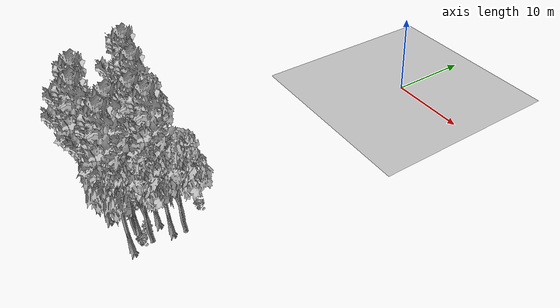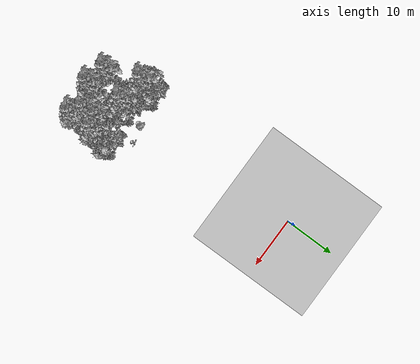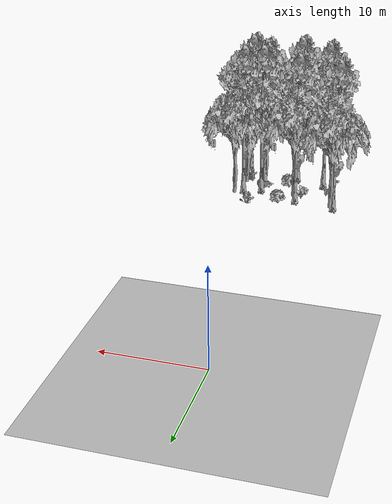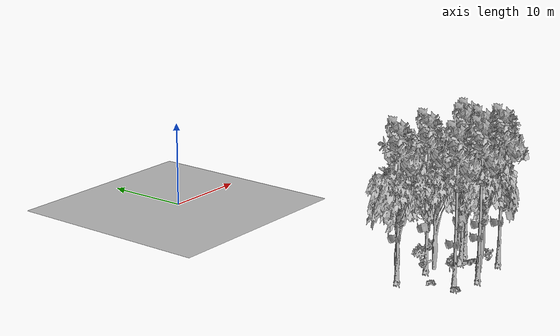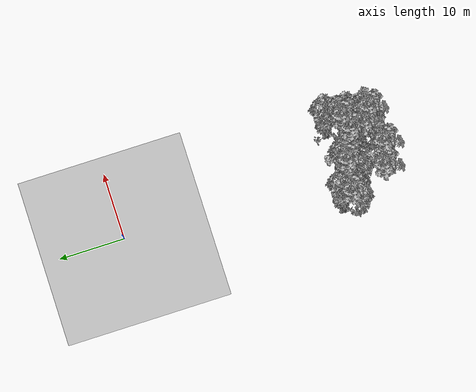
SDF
<sdf version="1.7">
 <world name="default">
  <model name="ground_plane">
   <static>1</static>
   <link name="link">
    <collision name="collision">
     <pose>-50 0 0 0 -0 0</pose>
     <geometry><plane><normal>0 0 1</normal><size>80 80</size></plane></geometry>
     <surface><contact><ode><min_depth>0.01</min_depth><max_vel>0</max_vel></ode></contact></surface>
    </collision>
    <visual name="grass">
     <cast_shadows>0</cast_shadows>
     <geometry>
      <mesh>
       <scale>0.46714285714285714 0.46714285714285714 0.1</scale>
       <uri>file://grass_plane/meshes/grass_plane.dae</uri>
      </mesh>
     </geometry>
    </visual>
   </link>
  </model>
  <model name="Tree 29">
   <static>1</static>
   <pose>0.5790758655412063 -35.10344212327158 0 1.57079 -0 0</pose>
   <link name="link">
    <collision name="collision">
     <geometry><mesh><scale>3.5 5 3.5</scale><uri>model://tree_2/meshes/tree_2.obj</uri></mesh></geometry>
    </collision>
    <visual name="visual">
     <geometry><mesh><scale>3.5 5 3.5</scale><uri>model://tree_2/meshes/tree_2.obj</uri></mesh></geometry>
    </visual>
   </link>
  </model>
  <model name="Tree 60">
   <static>1</static>
   <pose>-3.9295476951160424 -33.3151165129877 0 1.57079 -0 0</pose>
   <link name="link">
    <collision name="collision">
     <geometry><mesh><scale>3.5 5 3.5</scale><uri>model://tree_2/meshes/tree_2.obj</uri></mesh></geometry>
    </collision>
    <visual name="visual">
     <geometry><mesh><scale>3.5 5 3.5</scale><uri>model://tree_2/meshes/tree_2.obj</uri></mesh></geometry>
    </visual>
   </link>
  </model>
  <model name="Tree 113">
   <static>1</static>
   <pose>6.532601404913919 -37.421318994722185 0 1.57079 -0 0</pose>
   <link name="link">
    <collision name="collision">
     <geometry><mesh><scale>3.5 5 3.5</scale><uri>model://tree_2/meshes/tree_2.obj</uri></mesh></geometry>
    </collision>
    <visual name="visual">
     <geometry><mesh><scale>3.5 5 3.5</scale><uri>model://tree_2/meshes/tree_2.obj</uri></mesh></geometry>
    </visual>
   </link>
  </model>
  <model name="Tree 158">
   <static>1</static>
   <pose>1.2398910205611173 -39.98071643000988 0 1.57079 -0 0</pose>
   <link name="link">
    <collision name="collision">
     <geometry><mesh><scale>3.5 5 3.5</scale><uri>model://tree_9/meshes/tree_9.obj</uri></mesh></geometry>
    </collision>
    <visual name="visual">
     <geometry><mesh><scale>3.5 5 3.5</scale><uri>model://tree_9/meshes/tree_9.obj</uri></mesh></geometry>
    </visual>
   </link>
  </model>
  <model name="Tree 173">
   <static>1</static>
   <pose>0.2916689230886149 -34.30195008322437 0 1.57079 -0 0</pose>
   <link name="link">
    <collision name="collision">
     <geometry><mesh><scale>3.5 5 3.5</scale><uri>model://tree_9/meshes/tree_9.obj</uri></mesh></geometry>
    </collision>
    <visual name="visual">
     <geometry><mesh><scale>3.5 5 3.5</scale><uri>model://tree_9/meshes/tree_9.obj</uri></mesh></geometry>
    </visual>
   </link>
  </model>
  <model name="Tree 241">
   <static>1</static>
   <pose>7.142469260943656 -34.23537377061055 0 1.57079 -0 0</pose>
   <link name="link">
    <collision name="collision">
     <geometry><mesh><scale>3.5 5 3.5</scale><uri>model://tree_2/meshes/tree_2.obj</uri></mesh></geometry>
    </collision>
    <visual name="visual">
     <geometry><mesh><scale>3.5 5 3.5</scale><uri>model://tree_2/meshes/tree_2.obj</uri></mesh></geometry>
    </visual>
   </link>
  </model>
  <model name="Tree 262">
   <static>1</static>
   <pose>-1.9877117509402211 -39.04628626238843 0 1.57079 -0 0</pose>
   <link name="link">
    <collision name="collision">
     <geometry><mesh><scale>3.5 5 3.5</scale><uri>model://tree_9/meshes/tree_9.obj</uri></mesh></geometry>
    </collision>
    <visual name="visual">
     <geometry><mesh><scale>3.5 5 3.5</scale><uri>model://tree_9/meshes/tree_9.obj</uri></mesh></geometry>
    </visual>
   </link>
  </model>
  <model name="Tree 278">
   <static>1</static>
   <pose>6.6069311254167005 -39.41154781604606 0 1.57079 -0 0</pose>
   <link name="link">
    <collision name="collision">
     <geometry><mesh><scale>3.5 5 3.5</scale><uri>model://tree_9/meshes/tree_9.obj</uri></mesh></geometry>
    </collision>
    <visual name="visual">
     <geometry><mesh><scale>3.5 5 3.5</scale><uri>model://tree_9/meshes/tree_9.obj</uri></mesh></geometry>
    </visual>
   </link>
  </model>
  <model name="Tree 303">
   <static>1</static>
   <pose>4.559852618007518 -38.34912854488727 0 1.57079 -0 0</pose>
   <link name="link">
    <collision name="collision">
     <geometry><mesh><scale>3.5 5 3.5</scale><uri>model://tree_2/meshes/tree_2.obj</uri></mesh></geometry>
    </collision>
    <visual name="visual">
     <geometry><mesh><scale>3.5 5 3.5</scale><uri>model://tree_2/meshes/tree_2.obj</uri></mesh></geometry>
    </visual>
   </link>
  </model>
  <model name="Tree 358">
   <static>1</static>
   <pose>6.523595618208681 -35.382895885741526 0 1.57079 -0 0</pose>
   <link name="link">
    <collision name="collision">
     <geometry><mesh><scale>3.5 5 3.5</scale><uri>model://tree_9/meshes/tree_9.obj</uri></mesh></geometry>
    </collision>
    <visual name="visual">
     <geometry><mesh><scale>3.5 5 3.5</scale><uri>model://tree_9/meshes/tree_9.obj</uri></mesh></geometry>
    </visual>
   </link>
  </model>
  <model name="Tree 364">
   <static>1</static>
   <pose>4.720299603573977 -38.12946331165543 0 1.57079 -0 0</pose>
   <link name="link">
    <collision name="collision">
     <geometry><mesh><scale>3.5 5 3.5</scale><uri>model://tree_9/meshes/tree_9.obj</uri></mesh></geometry>
    </collision>
    <visual name="visual">
     <geometry><mesh><scale>3.5 5 3.5</scale><uri>model://tree_9/meshes/tree_9.obj</uri></mesh></geometry>
    </visual>
   </link>
  </model>
  <model name="Tree 380">
   <static>1</static>
   <pose>4.597145641778283 -36.04223901179281 0 1.57079 -0 0</pose>
   <link name="link">
    <collision name="collision">
     <geometry><mesh><scale>3.5 5 3.5</scale><uri>model://tree_9/meshes/tree_9.obj</uri></mesh></geometry>
    </collision>
    <visual name="visual">
     <geometry><mesh><scale>3.5 5 3.5</scale><uri>model://tree_9/meshes/tree_9.obj</uri></mesh></geometry>
    </visual>
   </link>
  </model>
  <model name="Tree 614">
   <static>1</static>
   <pose>-4.159509241219112 -33.53823270294515 0 1.57079 -0 0</pose>
   <link name="link">
    <collision name="collision">
     <geometry><mesh><scale>3.5 5 3.5</scale><uri>model://tree_9/meshes/tree_9.obj</uri></mesh></geometry>
    </collision>
    <visual name="visual">
     <geometry><mesh><scale>3.5 5 3.5</scale><uri>model://tree_9/meshes/tree_9.obj</uri></mesh></geometry>
    </visual>
   </link>
  </model>
  <model name="Bush 126">
   <static>1</static>
   <pose>1.0042744687282692 -36.79309269486093 0 1.57079 -0 0</pose>
   <link name="link">
    <collision name="collision">
     <geometry><mesh><scale>2 2 2</scale><uri>model://bush_5/meshes/bush_5.obj</uri></mesh></geometry>
     <surface><contact><collide_without_contact>false</collide_without_contact></contact></surface>
    </collision>
    <visual name="visual">
     <geometry><mesh><scale>2 2 2</scale><uri>model://bush_5/meshes/bush_5.obj</uri></mesh></geometry>
    </visual>
   </link>
  </model>
  <model name="Bush 147">
   <static>1</static>
   <pose>1.5843711861101681 -37.05101520078969 0 1.57079 -0 0</pose>
   <link name="link">
    <collision name="collision">
     <geometry><mesh><scale>2 2 2</scale><uri>model://bush_1/meshes/bush_1.obj</uri></mesh></geometry>
     <surface><contact><collide_without_contact>false</collide_without_contact></contact></surface>
    </collision>
    <visual name="visual">
     <geometry><mesh><scale>2 2 2</scale><uri>model://bush_1/meshes/bush_1.obj</uri></mesh></geometry>
    </visual>
   </link>
  </model>
  <model name="Bush 157">
   <static>1</static>
   <pose>6.417546021585707 -38.35314167257424 0 1.57079 -0 0</pose>
   <link name="link">
    <collision name="collision">
     <geometry><mesh><scale>2 2 2</scale><uri>model://bush_4/meshes/bush_4.obj</uri></mesh></geometry>
     <surface><contact><collide_without_contact>false</collide_without_contact></contact></surface>
    </collision>
    <visual name="visual">
     <geometry><mesh><scale>2 2 2</scale><uri>model://bush_4/meshes/bush_4.obj</uri></mesh></geometry>
    </visual>
   </link>
  </model>
  <model name="Bush 342">
   <static>1</static>
   <pose>-3.080097051794283 -39.88109179242795 0 1.57079 -0 0</pose>
   <link name="link">
    <collision name="collision">
     <geometry><mesh><scale>2 2 2</scale><uri>model://bush_2/meshes/bush_2.obj</uri></mesh></geometry>
     <surface><contact><collide_without_contact>false</collide_without_contact></contact></surface>
    </collision>
    <visual name="visual">
     <geometry><mesh><scale>2 2 2</scale><uri>model://bush_2/meshes/bush_2.obj</uri></mesh></geometry>
    </visual>
   </link>
  </model>
  <model name="Bush 421">
   <static>1</static>
   <pose>-0.36957498406404454 -34.49305734581026 0 1.57079 -0 0</pose>
   <link name="link">
    <collision name="collision">
     <geometry><mesh><scale>2 2 2</scale><uri>model://bush_0/meshes/bush_0.obj</uri></mesh></geometry>
     <surface><contact><collide_without_contact>false</collide_without_contact></contact></surface>
    </collision>
    <visual name="visual">
     <geometry><mesh><scale>2 2 2</scale><uri>model://bush_0/meshes/bush_0.obj</uri></mesh></geometry>
    </visual>
   </link>
  </model>
  <model name="Bush 429">
   <static>1</static>
   <pose>4.8634112397632805 -37.368831799121416 0 1.57079 -0 0</pose>
   <link name="link">
    <collision name="collision">
     <geometry><mesh><scale>2 2 2</scale><uri>model://bush_2/meshes/bush_2.obj</uri></mesh></geometry>
     <surface><contact><collide_without_contact>false</collide_without_contact></contact></surface>
    </collision>
    <visual name="visual">
     <geometry><mesh><scale>2 2 2</scale><uri>model://bush_2/meshes/bush_2.obj</uri></mesh></geometry>
    </visual>
   </link>
  </model>
  <model name="Bush 430">
   <static>1</static>
   <pose>1.863998178515189 -32.73360696030763 0 1.57079 -0 0</pose>
   <link name="link">
    <collision name="collision">
     <geometry><mesh><scale>2 2 2</scale><uri>model://bush_1/meshes/bush_1.obj</uri></mesh></geometry>
     <surface><contact><collide_without_contact>false</collide_without_contact></contact></surface>
    </collision>
    <visual name="visual">
     <geometry><mesh><scale>2 2 2</scale><uri>model://bush_1/meshes/bush_1.obj</uri></mesh></geometry>
    </visual>
   </link>
  </model>
  <model name="Bush 472">
   <static>1</static>
   <pose>-3.084556005563236 -36.98043188697342 0 1.57079 -0 0</pose>
   <link name="link">
    <collision name="collision">
     <geometry><mesh><scale>2 2 2</scale><uri>model://bush_2/meshes/bush_2.obj</uri></mesh></geometry>
     <surface><contact><collide_without_contact>false</collide_without_contact></contact></surface>
    </collision>
    <visual name="visual">
     <geometry><mesh><scale>2 2 2</scale><uri>model://bush_2/meshes/bush_2.obj</uri></mesh></geometry>
    </visual>
   </link>
  </model>
  <model name="Bush 474">
   <static>1</static>
   <pose>5.14226500029968 -31.817394363349088 0 1.57079 -0 0</pose>
   <link name="link">
    <collision name="collision">
     <geometry><mesh><scale>2 2 2</scale><uri>model://bush_4/meshes/bush_4.obj</uri></mesh></geometry>
     <surface><contact><collide_without_contact>false</collide_without_contact></contact></surface>
    </collision>
    <visual name="visual">
     <geometry><mesh><scale>2 2 2</scale><uri>model://bush_4/meshes/bush_4.obj</uri></mesh></geometry>
    </visual>
   </link>
  </model>
  <model name="Bush 583">
   <static>1</static>
   <pose>4.097107481377677 -37.08998253142489 0 1.57079 -0 0</pose>
   <link name="link">
    <collision name="collision">
     <geometry><mesh><scale>2 2 2</scale><uri>model://bush_2/meshes/bush_2.obj</uri></mesh></geometry>
     <surface><contact><collide_without_contact>false</collide_without_contact></contact></surface>
    </collision>
    <visual name="visual">
     <geometry><mesh><scale>2 2 2</scale><uri>model://bush_2/meshes/bush_2.obj</uri></mesh></geometry>
    </visual>
   </link>
  </model>
 </world>
</sdf>
